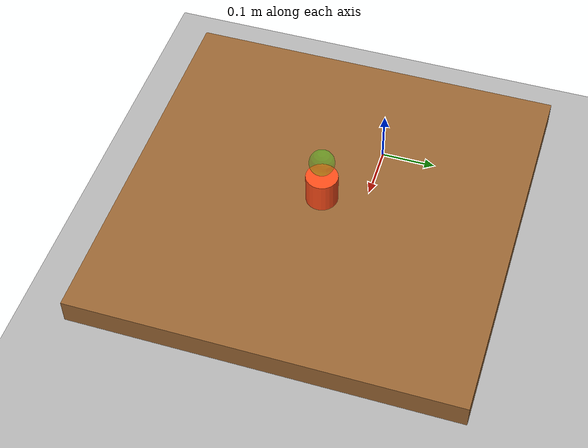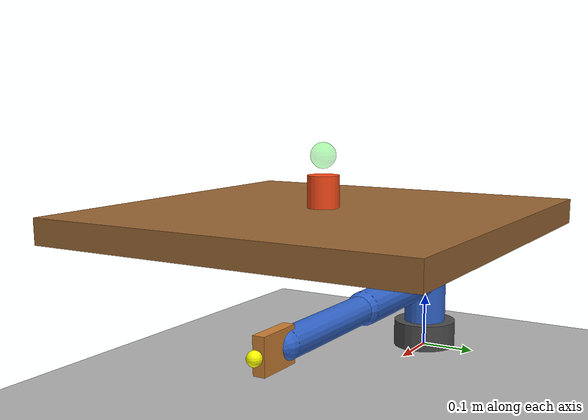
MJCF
<?xml version="1.0" ?>
<mujoco model="xarm_4dof">

  <compiler angle="radian" coordinate="local"/>
  <option timestep="0.002" gravity="0 0 -9.81" integrator="RK4" />

  <default>
    <joint damping="0.5" armature="0.02" frictionloss="0.1"/>
    <geom contype="1" conaffinity="1" friction="0.8 0.01 0.01"/>
    <motor ctrllimited="true"/>
  </default>

  <worldbody>
    <!-- Global lighting -->
    <light pos="0 0 2" dir="0 0 -1" diffuse="0.8 0.8 0.8"/>

    <!-- Ground floor -->
    <geom name="floor" type="plane" pos="0 0 0" size="2 2 0.01"
          rgba="0.7 0.7 0.7 1" contype="1" conaffinity="1"/>

    <!-- Table surface (workspace) -->
    <body name="table" pos="0.4 0 0.3">
      <geom type="box" size="0.3 0.3 0.02" rgba="0.6 0.4 0.2 1"
            contype="1" conaffinity="1" mass="10"/>
      <site name="table_surface" pos="0 0 0.02" size="0.01"/>
    </body>

    <!-- Robot base (fixed to world) -->
    <body name="base" pos="0 0 0">
      <!-- Base cylinder -->
      <geom type="cylinder" fromto="0 0 0 0 0 0.05" size="0.06"
            rgba="0.3 0.3 0.3 1" mass="2"/>

      <!-- ========== JOINT 1: Base Yaw (Z-axis rotation) ========== -->
      <body name="link1" pos="0 0 0.05">
        <joint name="joint1" type="hinge" axis="0 0 1"
               range="-2.618 2.618" damping="1.0" frictionloss="0.05"/>
        <inertial pos="0 0 0.04" mass="1.2" diaginertia="0.004 0.004 0.002"/>
        <geom type="cylinder" fromto="0 0 0 0 0 0.08" size="0.04"
              rgba="0.2 0.4 0.8 1" mass="1.2"/>

        <!-- ========== JOINT 2: Shoulder Pitch (Y-axis rotation) ========== -->
        <body name="link2" pos="0 0 0.08">
          <joint name="joint2" type="hinge" axis="0 1 0"
                 range="-2.059 2.059" damping="1.0" frictionloss="0.05"/>
          <inertial pos="0.1325 0 0" mass="1.0" diaginertia="0.006 0.010 0.010"/>
          <geom type="capsule" fromto="0 0 0 0.265 0 0" size="0.03"
                rgba="0.2 0.4 0.8 1" mass="1.0"/>

          <!-- ========== JOINT 3: Elbow Pitch (Y-axis rotation) ========== -->
          <body name="link3" pos="0.265 0 0">
            <joint name="joint3" type="hinge" axis="0 1 0"
                   range="-3.927 0.193" damping="0.8" frictionloss="0.04"/>
            <inertial pos="0.1225 0 0" mass="0.7" diaginertia="0.003 0.007 0.007"/>
            <geom type="capsule" fromto="0 0 0 0.245 0 0" size="0.025"
                  rgba="0.2 0.4 0.8 1" mass="0.7"/>

            <!-- ========== JOINT 4: Gripper (Prismatic slide) ========== -->
            <body name="ee_link" pos="0.245 0 0">
              <joint name="gripper" type="slide" axis="0 1 0"
                     range="0.0 0.085" damping="0.3" frictionloss="0.01"/>
              <inertial pos="0.03 0 0" mass="0.2" diaginertia="0.001 0.001 0.001"/>
              <geom type="box" size="0.04 0.01 0.03" pos="0.03 0 0"
                    rgba="0.8 0.5 0.2 1" mass="0.2"/>

              <!-- End-effector site for kinematics and sensors -->
              <site name="ee_site" pos="0.08 0 0" size="0.012"
                    rgba="1 1 0 1"/>

              <!-- Wrist camera (eye-in-hand perspective) -->
              <camera name="camera_wrist" pos="0.08 0 0"
                      xyaxes="1 0 0 0 0 1" fovy="45"/>
            </body>
          </body>
        </body>
      </body>
    </body>

    <!-- ========== MANIPULANDUM: Medium object ========== -->
    <!-- Matches "lift medium object" task in dataset -->
    <body name="object" pos="0.4 0.0 0.33">
      <freejoint name="object_joint"/>
      <inertial pos="0 0 0" mass="0.08" diaginertia="0.00003 0.00003 0.00003"/>
      <geom type="cylinder" size="0.025 0.04" rgba="1 0.3 0.1 1"
            mass="0.08" contype="1" conaffinity="1" friction="1.0"/>
      <site name="object_site" size="0.01" rgba="0 1 0 1"/>
    </body>

    <!-- ========== TARGET ZONE (visual marker) ========== -->
    <body name="target_zone" pos="0.4 0 0.4" mocap="true">
      <geom type="sphere" size="0.02" rgba="0 1 0 0.3"
            contype="0" conaffinity="0"/>
    </body>

    <!-- ========== CAMERAS ========== -->
    <!-- Primary RGB camera: matches dataset (84×84 perspective) -->
    <camera name="camera_rgb" pos="0.5 0 0.8"
            xyaxes="0 -1 0 -0.7 0 0.7" fovy="45"/>

    <!-- Side view for visualization -->
    <camera name="camera_side" pos="-0.1 0.8 0.5"
            xyaxes="-1 0 0 0 -0.5 0.866" fovy="45"/>
  </worldbody>

  <!-- ========== ACTUATORS (joint motors) ========== -->
  <actuator>
    <!-- Three arm joint motors (torque-controlled) -->
    <motor name="act_j1" joint="joint1" gear="100" ctrlrange="-5 5"/>
    <motor name="act_j2" joint="joint2" gear="100" ctrlrange="-8 8"/>
    <motor name="act_j3" joint="joint3" gear="80"  ctrlrange="-5 5"/>
    <!-- Gripper motor (force-controlled) -->
    <motor name="act_gripper" joint="gripper" gear="20" ctrlrange="0 2"/>
  </actuator>

  <!-- ========== SENSORS ========== -->
  <sensor>
    <!-- Joint proprioception: positions -->
    <jointpos name="q_j1" joint="joint1"/>
    <jointpos name="q_j2" joint="joint2"/>
    <jointpos name="q_j3" joint="joint3"/>
    <jointpos name="q_gripper" joint="gripper"/>

    <!-- Joint velocities -->
    <jointvel name="qd_j1" joint="joint1"/>
    <jointvel name="qd_j2" joint="joint2"/>
    <jointvel name="qd_j3" joint="joint3"/>
    <jointvel name="qd_gripper" joint="gripper"/>

    <!-- End-effector position in world frame -->
    <framepos name="ee_pos" objtype="site" objname="ee_site"/>

    <!-- Object position (ground truth for evaluation) -->
    <framepos name="obj_pos" objtype="site" objname="object_site"/>

    <!-- ========== LiDAR via Rangefinders (32-ray dome) ========== -->
    <!-- Horizontal: 8 rays, Vertical: 4 layers = 32 rays total -->
    <!-- Layer 0 (elevation 0°): front panel -->
    <rangefinder name="lidar_00_h0_v0" site="ee_site" cutoff="1.0"/>
    <rangefinder name="lidar_01_h45_v0" site="ee_site" cutoff="1.0"/>
    <rangefinder name="lidar_02_h90_v0" site="ee_site" cutoff="1.0"/>
    <rangefinder name="lidar_03_h135_v0" site="ee_site" cutoff="1.0"/>
    <rangefinder name="lidar_04_h180_v0" site="ee_site" cutoff="1.0"/>
    <rangefinder name="lidar_05_h225_v0" site="ee_site" cutoff="1.0"/>
    <rangefinder name="lidar_06_h270_v0" site="ee_site" cutoff="1.0"/>
    <rangefinder name="lidar_07_h315_v0" site="ee_site" cutoff="1.0"/>

    <!-- Layer 1 (elevation ~22.5°) -->
    <rangefinder name="lidar_08_h0_v1" site="ee_site" cutoff="1.0"/>
    <rangefinder name="lidar_09_h45_v1" site="ee_site" cutoff="1.0"/>
    <rangefinder name="lidar_10_h90_v1" site="ee_site" cutoff="1.0"/>
    <rangefinder name="lidar_11_h135_v1" site="ee_site" cutoff="1.0"/>
    <rangefinder name="lidar_12_h180_v1" site="ee_site" cutoff="1.0"/>
    <rangefinder name="lidar_13_h225_v1" site="ee_site" cutoff="1.0"/>
    <rangefinder name="lidar_14_h270_v1" site="ee_site" cutoff="1.0"/>
    <rangefinder name="lidar_15_h315_v1" site="ee_site" cutoff="1.0"/>

    <!-- Layer 2 (elevation ~45.0°) -->
    <rangefinder name="lidar_16_h0_v2" site="ee_site" cutoff="1.0"/>
    <rangefinder name="lidar_17_h45_v2" site="ee_site" cutoff="1.0"/>
    <rangefinder name="lidar_18_h90_v2" site="ee_site" cutoff="1.0"/>
    <rangefinder name="lidar_19_h135_v2" site="ee_site" cutoff="1.0"/>
    <rangefinder name="lidar_20_h180_v2" site="ee_site" cutoff="1.0"/>
    <rangefinder name="lidar_21_h225_v2" site="ee_site" cutoff="1.0"/>
    <rangefinder name="lidar_22_h270_v2" site="ee_site" cutoff="1.0"/>
    <rangefinder name="lidar_23_h315_v2" site="ee_site" cutoff="1.0"/>

    <!-- Layer 3 (elevation ~67.5°) -->
    <rangefinder name="lidar_24_h0_v3" site="ee_site" cutoff="1.0"/>
    <rangefinder name="lidar_25_h45_v3" site="ee_site" cutoff="1.0"/>
    <rangefinder name="lidar_26_h90_v3" site="ee_site" cutoff="1.0"/>
    <rangefinder name="lidar_27_h135_v3" site="ee_site" cutoff="1.0"/>
    <rangefinder name="lidar_28_h180_v3" site="ee_site" cutoff="1.0"/>
    <rangefinder name="lidar_29_h225_v3" site="ee_site" cutoff="1.0"/>
    <rangefinder name="lidar_30_h270_v3" site="ee_site" cutoff="1.0"/>
    <rangefinder name="lidar_31_h315_v3" site="ee_site" cutoff="1.0"/>
  </sensor>

</mujoco>
